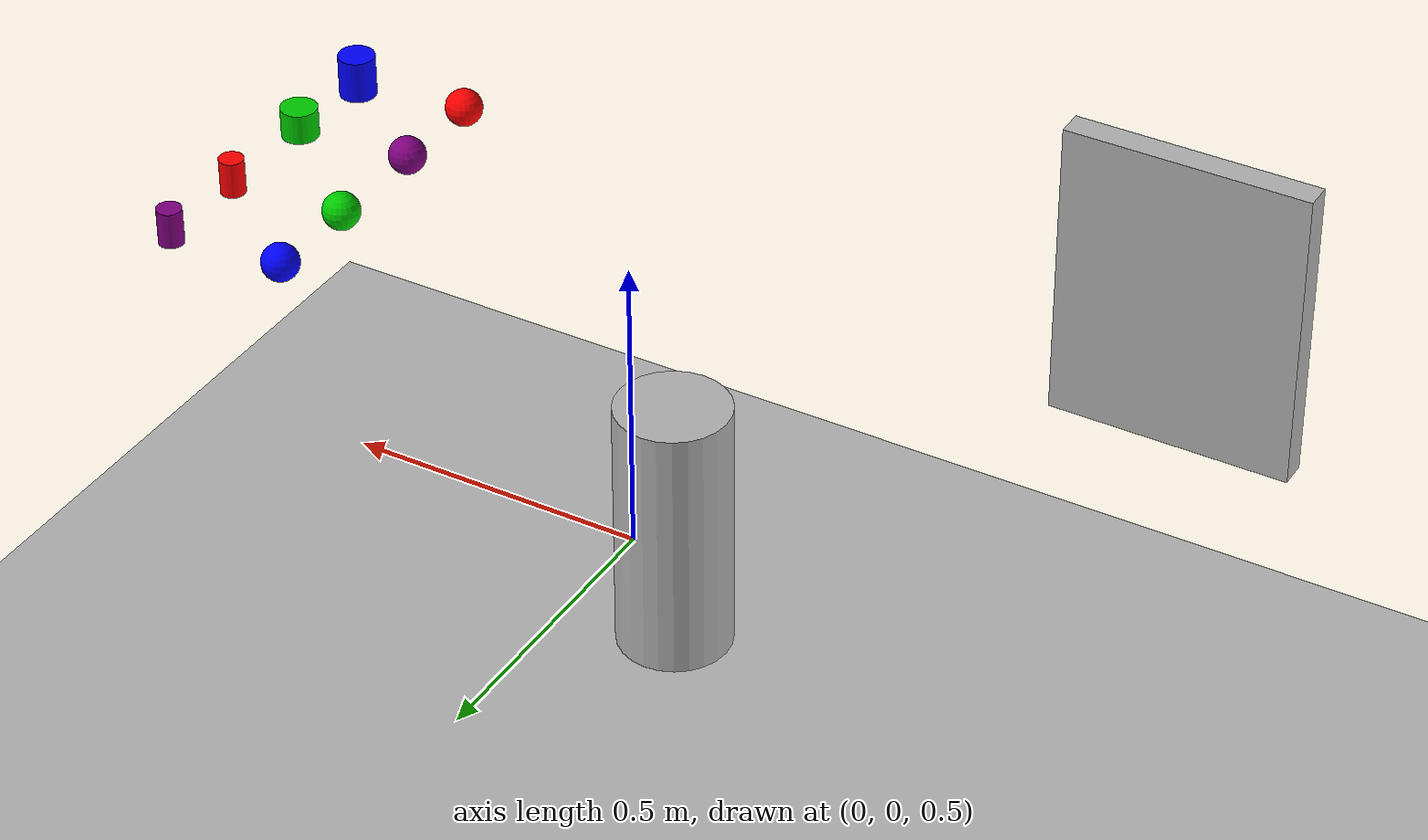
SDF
<sdf version="1.9">
 <world name="default">
  <plugin filename="gz-sim-physics-system" name="gz::sim::systems::Physics"/>
  <plugin filename="gz-sim-user-commands-system" name="gz::sim::systems::UserCommands"/>
  <plugin filename="gz-sim-scene-broadcaster-system" name="gz::sim::systems::SceneBroadcaster"/>
  <plugin filename="gz-sim-sensors-system" name="gz::sim::systems::Sensors">
   <render_engine>ogre2</render_engine>
  </plugin>
  <light name="sun" type="directional">
   <pose>0 0 10 0 -0 0</pose>
   <diffuse>0.8 0.8 0.8 1</diffuse>
   <specular>0.2 0.2 0.2 1</specular>
   <attenuation>
    <range>1000</range>
    <constant>0.9</constant>
    <linear>0.01</linear>
    <quadratic>0.001</quadratic>
   </attenuation>
   <direction>-0.5 0.1 -0.9</direction>
  </light>
  <model name="ground_plane">
   <static>1</static>
   <link name="link">
    <collision name="collision">
     <geometry><plane><normal>0 0 1</normal><size>100 100</size></plane></geometry>
     <surface>
      <contact><collide_bitmask>65535</collide_bitmask></contact>
      <friction><ode><mu>100</mu><mu2>50</mu2></ode></friction>
     </surface>
    </collision>
    <visual name="visual">
     <cast_shadows>0</cast_shadows>
     <geometry><plane><normal>0 0 1</normal><size>100 100</size></plane></geometry>
     <material>
      <ambient>0.7 0.7 0.7 1</ambient>
      <diffuse>0.7 0.7 0.7 1</diffuse>
      <specular>0.01 0.01 0.01 1</specular>
     </material>
    </visual>
   </link>
  </model>
  <gravity>0 0 -9.8</gravity>
  <magnetic_field>6e-06 2.3e-05 -4.2e-05</magnetic_field>
  <atmosphere type="adiabatic"/>
  <physics name="default_physics" default="0" type="ode">
   <max_step_size>0.001</max_step_size>
   <real_time_factor>1</real_time_factor>
   <real_time_update_rate>1000</real_time_update_rate>
  </physics>
  <scene><ambient>0.4 0.4 0.4 1</ambient><background>0.7 0.7 0.7 1</background><shadows>1</shadows></scene>
  <spherical_coordinates>
   <surface_model>EARTH_WGS84</surface_model>
   <latitude_deg>0</latitude_deg>
   <longitude_deg>0</longitude_deg>
   <elevation>0</elevation>
   <heading_deg>0</heading_deg>
  </spherical_coordinates>
  <model name="unit_box">
   <pose>-0.7 -0.435456 0.927284 0 -2e-06 -0.000979</pose>
   <link name="link">
    <inertial>
     <mass>1</mass>
     <inertia>
      <ixx>0.166667</ixx>
      <ixy>0</ixy>
      <ixz>0</ixz>
      <iyy>0.166667</iyy>
      <iyz>0</iyz>
      <izz>0.166667</izz>
     </inertia>
    </inertial>
    <collision name="collision"><geometry><box><size>0.4 0.04449 0.5</size></box></geometry></collision>
    <visual name="visual">
     <geometry><box><size>0.4 0.04449 0.5</size></box></geometry>
     <material>
      <ambient>0.7 0.7 0.7 1</ambient>
      <diffuse>0.7 0.7 0.7 1</diffuse>
      <specular>0.01 0.01 0.01 1</specular>
     </material>
    </visual>
   </link>
   <static>1</static>
  </model>
  <model name="unit_cylinder">
   <pose>-0.3 0.38 0.897305 -1.3e-05 -8.1e-05 2.9e-05</pose>
   <link name="link">
    <inertial>
     <mass>1</mass>
     <inertia><ixx>0.145833</ixx><ixy>0</ixy><ixz>0</ixz><iyy>0.145833</iyy><iyz>0</iyz><izz>0.125</izz></inertia>
    </inertial>
    <collision name="collision">
     <geometry><cylinder><radius>0.085071</radius><length>0.4</length></cylinder></geometry>
    </collision>
    <visual name="visual">
     <geometry><cylinder><radius>0.085071</radius><length>0.4</length></cylinder></geometry>
     <material>
      <ambient>0.7 0.7 0.7 1</ambient>
      <diffuse>0.7 0.7 0.7 1</diffuse>
      <specular>0.01 0.01 0.01 1</specular>
     </material>
    </visual>
   </link>
   <static>1</static>
  </model>
  <model name="blue_sphere">
   <pose>0.45 0.25 1.01 0 -0 0</pose>
   <link name="blue_sphere">
    <inertial>
     <mass>0.01</mass>
     <inertia><ixx>0</ixx><ixy>0</ixy><ixz>0</ixz><iyy>0</iyy><iyz>0</iyz><izz>0</izz></inertia>
    </inertial>
    <collision name="blue_sphere_collision">
     <geometry><sphere><radius>0.03</radius></sphere></geometry>
    </collision>
    <visual name="blue_sphere_visual">
     <geometry><sphere><radius>0.03</radius></sphere></geometry>
     <material><ambient>0 0 1 1</ambient><diffuse>0 0 1 1</diffuse><specular>0.1 0.1 0.1 1</specular></material>
    </visual>
   </link>
  </model>
  <model name="red_sphere">
   <pose>0.45 -0.25 1.01 0 -0 0</pose>
   <link name="red_sphere">
    <inertial>
     <mass>0.01</mass>
     <inertia><ixx>0</ixx><ixy>0</ixy><ixz>0</ixz><iyy>0</iyy><iyz>0</iyz><izz>0</izz></inertia>
    </inertial>
    <collision name="red_sphere_collision"><geometry><sphere><radius>0.03</radius></sphere></geometry></collision>
    <visual name="red_sphere_visual">
     <geometry><sphere><radius>0.03</radius></sphere></geometry>
     <material><ambient>1 0 0 1</ambient><diffuse>1 0 0 1</diffuse><specular>0.1 0.1 0.1 1</specular></material>
    </visual>
   </link>
  </model>
  <model name="green_sphere">
   <pose>0.45 0.09 1.01 0 -0 0</pose>
   <link name="green_sphere">
    <inertial>
     <mass>0.01</mass>
     <inertia><ixx>0</ixx><ixy>0</ixy><ixz>0</ixz><iyy>0</iyy><iyz>0</iyz><izz>0</izz></inertia>
    </inertial>
    <collision name="green_sphere_collision">
     <geometry><sphere><radius>0.03</radius></sphere></geometry>
    </collision>
    <visual name="green_sphere_visual">
     <geometry><sphere><radius>0.03</radius></sphere></geometry>
     <material>
      <ambient>0 0.8 0 1</ambient>
      <diffuse>0 0.8 0 1</diffuse>
      <specular>0.1 0.1 0.1 1</specular>
     </material>
    </visual>
   </link>
  </model>
  <model name="purple_sphere">
   <pose>0.45 -0.09 1.01 0 -0 0</pose>
   <link name="purple_sphere">
    <inertial>
     <mass>0.01</mass>
     <inertia><ixx>0</ixx><ixy>0</ixy><ixz>0</ixz><iyy>0</iyy><iyz>0</iyz><izz>0</izz></inertia>
    </inertial>
    <collision name="purple_sphere_collision">
     <geometry><sphere><radius>0.03</radius></sphere></geometry>
    </collision>
    <visual name="purple_sphere_visual">
     <geometry><sphere><radius>0.03</radius></sphere></geometry>
     <material>
      <ambient>0.5 0 0.5 1</ambient>
      <diffuse>0.5 0 0.5 1</diffuse>
      <specular>0.1 0.1 0.1 1</specular>
     </material>
    </visual>
   </link>
  </model>
  <model name="green_cylinder">
   <pose>0.65 -0.09 1.01 0 -0 0</pose>
   <link name="green_cylinder">
    <inertial>
     <mass>0.01</mass>
     <inertia><ixx>0</ixx><ixy>0</ixy><ixz>0</ixz><iyy>0</iyy><iyz>0</iyz><izz>0</izz></inertia>
    </inertial>
    <collision name="green_cylinder_collision">
     <geometry><cylinder><radius>0.03</radius><length>0.05</length></cylinder></geometry>
    </collision>
    <visual name="green_cylinder_visual">
     <geometry><cylinder><radius>0.03</radius><length>0.05</length></cylinder></geometry>
     <material>
      <ambient>0 0.8 0 1</ambient>
      <diffuse>0 0.8 0 1</diffuse>
      <specular>0.1 0.1 0.1 1</specular>
     </material>
    </visual>
   </link>
  </model>
  <model name="purple_cylinder">
   <pose>0.65 0.25 1.01 0 -0 0</pose>
   <link name="purple_cylinder">
    <inertial>
     <mass>0.01</mass>
     <inertia><ixx>0</ixx><ixy>0</ixy><ixz>0</ixz><iyy>0</iyy><iyz>0</iyz><izz>0</izz></inertia>
    </inertial>
    <collision name="purple_cylinder_collision">
     <geometry><cylinder><radius>0.02</radius><length>0.06</length></cylinder></geometry>
    </collision>
    <visual name="purple_cylinder_visual">
     <geometry><cylinder><radius>0.02</radius><length>0.06</length></cylinder></geometry>
     <material>
      <ambient>0.5 0 0.5 1</ambient>
      <diffuse>0.5 0 0.5 1</diffuse>
      <specular>0.1 0.1 0.1 1</specular>
     </material>
    </visual>
   </link>
  </model>
  <model name="red_cylinder">
   <pose>0.65 0.09 1.01 0 -0 0</pose>
   <link name="red_cylinder">
    <inertial>
     <mass>0.01</mass>
     <inertia><ixx>0</ixx><ixy>0</ixy><ixz>0</ixz><iyy>0</iyy><iyz>0</iyz><izz>0</izz></inertia>
    </inertial>
    <collision name="red_cylinder_collision">
     <geometry><cylinder><radius>0.02</radius><length>0.06</length></cylinder></geometry>
    </collision>
    <visual name="red_cylinder_visual">
     <geometry><cylinder><radius>0.02</radius><length>0.06</length></cylinder></geometry>
     <material><ambient>1 0 0 1</ambient><diffuse>1 0 0 1</diffuse><specular>0.1 0.1 0.1 1</specular></material>
    </visual>
   </link>
  </model>
  <model name="blue_cylinder">
   <pose>0.65 -0.25 1.01 0 -0 0</pose>
   <link name="blue_cylinder">
    <inertial>
     <mass>0.01</mass>
     <inertia><ixx>0</ixx><ixy>0</ixy><ixz>0</ixz><iyy>0</iyy><iyz>0</iyz><izz>0</izz></inertia>
    </inertial>
    <collision name="blue_cylinder_collision">
     <geometry><cylinder><radius>0.03</radius><length>0.07</length></cylinder></geometry>
    </collision>
    <visual name="blue_cylinder_visual">
     <geometry><cylinder><radius>0.03</radius><length>0.07</length></cylinder></geometry>
     <material><ambient>0 0 1 1</ambient><diffuse>0 0 1 1</diffuse><specular>0.1 0.1 0.1 1</specular></material>
    </visual>
   </link>
  </model>
 </world>
</sdf>
